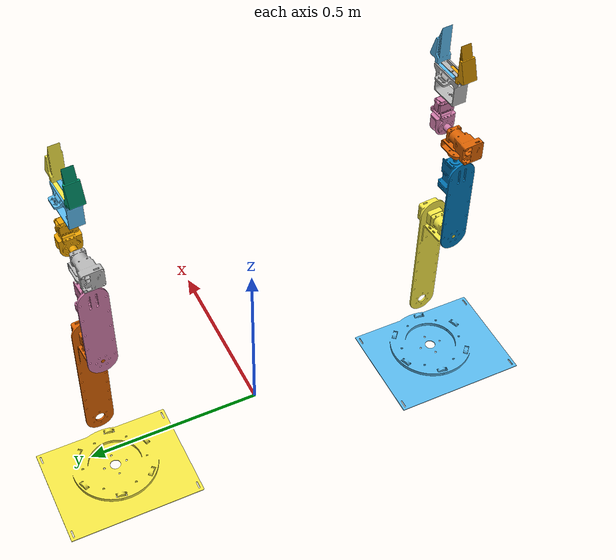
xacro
<?xml version="1.0"?>
<robot xmlns:xacro="http://www.ros.org/wiki/xacro" name="ArmPlate">

    <xacro:arg name="left_initial_positions_file"
            default="$(find arm_urdf_moveit_config)/config/left_initial_positions.yaml"/>
    <xacro:arg name="right_initial_positions_file"
            default="$(find arm_urdf_moveit_config)/config/right_initial_positions.yaml"/>

    <!-- Root link -->
    <link name="world"/>

    <!-- Xacro imports -->
    <xacro:include filename="$(find arm_urdf_moveit_config)/config/ArmPlate.xacro" />

<!-- Left arm -->
<xacro:ArmPlate
    name="left_arm"
    prefix="left_"
    initial_positions_file="$(arg left_initial_positions_file)"
    origin_xyz="0 -0.5 0"
    origin_rpy="0 0 0"/>

<!-- Right arm -->
<xacro:ArmPlate
    name="right_arm"
    prefix="right_"
    initial_positions_file="$(arg right_initial_positions_file)"
    origin_xyz="0 0.5 0"
    origin_rpy="0 0 0"/>

</robot>

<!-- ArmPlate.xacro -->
<robot name="dummy" xmlns:xacro="http://www.ros.org/wiki/xacro">

    <xacro:macro name="ArmPlate" params="name prefix initial_positions_file origin_xyz origin_rpy">

    <xacro:include filename="$(find arm_urdf_moveit_config)/config/ArmPlate.ros2_control.xacro" />
    <xacro:ArmPlate_ros2_control name="${name}" initial_positions_file="${initial_positions_file}" prefix="${prefix}"/>

    <joint name="${prefix}base_to_world" type="fixed">
    <origin xyz="${origin_xyz}" rpy="${origin_rpy}"/>
        <parent link="world" />
        <child link="${prefix}Base_link1-v1" />
    </joint>

    <link name="${prefix}Base_link1-v1">
        <inertial>
            <origin xyz="-0.0674024747578498 -0.052144759691377905 0.001871879485998631" rpy="0.0 0.0 0.0" />
            <mass value="4.311969816496875" />
            <inertia ixx="0.03729401814426159" iyy="0.028233182216333773" izz="0.06539104879017638" ixy="-3.479855292809475e-15" iyz="1.0668549377257364e-16" ixz="-0.00020885219602048547" />
        </inertial>
        <visual name="Base_link1-v1_visual">
            <origin xyz="0.0 0.0 0.0" rpy="0.0 0.0 0.0" />
            <geometry>
                <mesh filename="package://arm_urdf/meshes/Base_link1-v1.stl" scale="0.001 0.001 0.001" />
            </geometry>
        </visual>
        <collision name="Base_link1-v1_collision">
            <origin xyz="0.0 0.0 0.0" rpy="0.0 0.0 0.0" />
            <geometry>
                <mesh filename="package://arm_urdf/meshes/Base_link1-v1.stl" scale="0.001 0.001 0.001" />
            </geometry>
        </collision>
    </link>
    <link name="${prefix}2ndDOFDDD-v1">
        <inertial>
            <origin xyz="0.005563007183593101 0.008083968084292402 -0.10431093233027892" rpy="0.0 -0.0 0.0" />
            <mass value="6.914197067582951" />
            <inertia ixx="0.0489503398990333" iyy="0.05164846688679926" izz="0.026188561835283307" ixy="0.000744724254469125" iyz="0.0009319574397850192" ixz="-0.00045704067111378735" />
        </inertial>
    </link>
    <link name="${prefix}lnk1assm-v2">
        <inertial>
            <origin xyz="-0.002591598973958833 -0.23584751583887864 -0.00539988945227305" rpy="0.0 1.3877787807823214e-17 -1.5777218104420236e-30" />
            <mass value="2.0414167169593447" />
            <inertia ixx="0.029664413351168283" iyy="0.0017505470451872956" izz="0.02962243298274335" ixy="-0.00029616879202136004" iyz="0.0015603149109663106" ixz="2.540746428059758e-05" />
        </inertial>
        <visual name="lnk1assm-v2_visual">
            <origin xyz="-0.003921107309494927 -0.34147748775887143 0.08610000077174858" rpy="1.0011067892201222e-15 2.63677968348484e-16 1.0432232103974771e-16" />
            <geometry>
                <mesh filename="package://arm_urdf/meshes/lnk1assm-v2.stl" scale="0.001 0.001 0.001" />
            </geometry>
        </visual>
        <collision name="lnk1assm-v2_collision">
            <origin xyz="-0.003921107309494927 -0.34147748775887143 0.08610000077174858" rpy="1.0011067892201222e-15 2.63677968348484e-16 1.0432232103974771e-16" />
            <geometry>
                <mesh filename="package://arm_urdf/meshes/lnk1assm-v2.stl" scale="0.001 0.001 0.001" />
            </geometry>
        </collision>
    </link>
    <link name="${prefix}lnk2_assm-v2">
        <inertial>
            <origin xyz="0.015287483405147686 0.0015469235286940375 0.14314076456091882" rpy="0.0 -2.802596928649634e-45 7.718750464542261e-60" />
            <mass value="1.6041672165297656" />
            <inertia ixx="0.011935327683088248" iyy="0.011817416915501418" izz="0.001112072658466317" ixy="-1.4881667141780628e-06" iyz="-0.0001166157499106618" ixz="-0.0010845287768283282" />
        </inertial>
        <visual name="lnk2_assm-v2_visual">
            <origin xyz="0.03287283838328484 0.003560737736243089 0.2818374324484128" rpy="-1.4080220534306864e-15 -1.059118750771804e-14 -1.4931462929201005" />
            <geometry>
                <mesh filename="package://arm_urdf/meshes/lnk2_assm-v2.stl" scale="0.001 0.001 0.001" />
            </geometry>
        </visual>
        <collision name="lnk2_assm-v2_collision">
            <origin xyz="0.03287283838328484 0.003560737736243089 0.2818374324484128" rpy="-1.4080220534306864e-15 -1.059118750771804e-14 -1.4931462929201005" />
            <geometry>
                <mesh filename="package://arm_urdf/meshes/lnk2_assm-v2.stl" scale="0.001 0.001 0.001" />
            </geometry>
        </collision>
    </link>
    <link name="${prefix}5thDof_mnt-v2">
        <inertial>
            <origin xyz="-0.012784684069178872 -0.0013025970291178357 0.031390730609038686" rpy="0.0 -0.0 0.0" />
            <mass value="0.7682943067467453" />
            <inertia ixx="0.0005398526790914571" iyy="0.001098740864250658" izz="0.000876494162175584" ixy="-5.5264308595074155e-05" iyz="1.4526969696712633e-05" ixz="0.00015907949467902638" />
        </inertial>
        <visual name="5thDof_mnt-v2_visual">
            <origin xyz="0.06116513562152025 0.004759041505515995 0.04150000244841479" rpy="-3.063942619714997 -1.5707963267948506 0" />
            <geometry>
                <mesh filename="package://arm_urdf/meshes/5thDof_mnt-v2.stl" scale="0.001 0.001 0.001" />
            </geometry>
        </visual>
        <collision name="5thDof_mnt-v2_collision">
            <origin xyz="0.06116513562152025 0.004759041505515995 0.04150000244841479" rpy="-3.063942619714997 -1.5707963267948506 0" />
            <geometry>
                <mesh filename="package://arm_urdf/meshes/5thDof_mnt-v2.stl" scale="0.001 0.001 0.001" />
            </geometry>
        </collision>
    </link>
    <link name="${prefix}6Thdof-v2">
        <inertial>
            <origin xyz="0.008214367551119024 0.0006178674357249214 0.031384946859303826" rpy="-2.2420775429197073e-44 -0.0 0.0" />
            <mass value="0.8639927133401125" />
            <inertia ixx="0.0009572359903424752" iyy="0.0009230269883602205" izz="0.0002909038116962609" ixy="2.710767043214595e-06" iyz="9.914638568871148e-06" ixz="-4.8704209516635046e-05" />
        </inertial>
        <visual name="6Thdof-v2_visual">
            <origin xyz="0.011036478474497909 -0.012932846063207827 0.08200000244841477" rpy="4.266020662176333e-15 4.485125411027998e-14 -3.0639426197149975" />
            <geometry>
                <mesh filename="package://arm_urdf/meshes/6Thdof-v2.stl" scale="0.001 0.001 0.001" />
            </geometry>
        </visual>
        <collision name="6Thdof-v2_collision">
            <origin xyz="0.011036478474497909 -0.012932846063207827 0.08200000244841477" rpy="4.266020662176333e-15 4.485125411027998e-14 -3.0639426197149975" />
            <geometry>
                <mesh filename="package://arm_urdf/meshes/6Thdof-v2.stl" scale="0.001 0.001 0.001" />
            </geometry>
        </collision>
    </link>
    <link name="${prefix}gripperHousing-v2">
        <inertial>
            <origin xyz="-0.00013921429310007394 0.001855694220722368 0.047786878393741856" rpy="0.0 -0.0 0.0" />
            <mass value="0.5576326934437552" />
            <inertia ixx="0.0004695146364697145" iyy="0.0008816687160502767" izz="0.0006167594787314344" ixy="-3.232159477185512e-05" iyz="-1.2242098957490621e-05" ixz="9.183742992122149e-07" />
        </inertial>
        <visual name="gripperHousing-v2_visual">
            <origin xyz="-1.525502200117046e-09 3.936792145609047e-09 2.4484144489633764e-09" rpy="-4.266020662176041e-15 -2.0620936462850397e-14 0.07765003387479581" />
            <geometry>
                <mesh filename="package://arm_urdf/meshes/gripperHousing-v2.stl" scale="0.001 0.001 0.001" />
            </geometry>
        </visual>
        <collision name="gripperHousing-v2_collision">
            <origin xyz="-1.525502200117046e-09 3.936792145609047e-09 2.4484144489633764e-09" rpy="-4.266020662176041e-15 -2.0620936462850397e-14 0.07765003387479581" />
            <geometry>
                <mesh filename="package://arm_urdf/meshes/gripperHousing-v2.stl" scale="0.001 0.001 0.001" />
            </geometry>
        </collision>
    </link>
    <link name="${prefix}left_H-v1">
        <inertial>
            <origin xyz="-0.03857920530896109 -0.002507519809183858 0.0001992428471497476" rpy="-4.121466071543581e-45 -0.0 0.0" />
            <mass value="0.4330027264168371" />
            <inertia ixx="0.0001531814190167935" iyy="0.0003859475340479146" izz="0.00034050173036892506" ixy="-1.8463860142345745e-05" iyz="1.4471313147474644e-05" ixz="4.1220378661202906e-05" />
        </inertial>
        <visual name="left_H-v1_visual">
            <origin xyz="0.03539594370174484 -0.026115815402647638 -0.029483865374257602" rpy="-2.6340835845626366e-13 1.4931462929201007 -1.570796326795163" />
            <geometry>
                <mesh filename="package://arm_urdf/meshes/left_H-v1.stl" scale="0.001 0.001 0.001" />
            </geometry>
        </visual>
        <collision name="left_H-v1_collision">
            <origin xyz="0.03539594370174484 -0.026115815402647638 -0.029483865374257602" rpy="-2.6340835845626366e-13 1.4931462929201007 -1.570796326795163" />
            <geometry>
                <mesh filename="package://arm_urdf/meshes/left_H-v1.stl" scale="0.001 0.001 0.001" />
            </geometry>
        </collision>
    </link>
    <link name="${prefix}right_H-v1">
        <inertial>
            <origin xyz="0.03857921508488488 0.0025075221635958746 0.00019924149858097985" rpy="-2.9674555715114166e-45 -0.0 0.0" />
            <mass value="0.4330027264168263" />
            <inertia ixx="0.00015318174926833418" iyy="0.0003859473890370778" izz="0.0003405012645987804" ixy="-1.8463956405788322e-05" iyz="-1.4471222312344915e-05" ixz="-4.122038659255113e-05" />
        </inertial>
        <visual name="right_H-v1_visual">
            <origin xyz="0.0014000027762429569 0.02697397988318141 -0.06071536489232356" rpy="-1.5707963267951677 -1.4931462929201007 -1.570796326794629" />
            <geometry>
                <mesh filename="package://arm_urdf/meshes/right_H-v1.stl" scale="0.001 0.001 0.001" />
            </geometry>
        </visual>
        <collision name="right_H-v1_collision">
            <origin xyz="0.0014000027762429569 0.02697397988318141 -0.06071536489232356" rpy="-1.5707963267951677 -1.4931462929201007 -1.570796326794629" />
            <geometry>
                <mesh filename="package://arm_urdf/meshes/right_H-v1.stl" scale="0.001 0.001 0.001" />
            </geometry>
        </collision>
    </link>
    <link name="${prefix}grasp_frame">
    </link>
    <joint name="${prefix}grasp_joint" type="fixed">
        <origin xyz="0.0 0.0 0.15" rpy="0.0 0.0 0.0" />
        <parent link="${prefix}gripperHousing-v2" />
        <child link="${prefix}grasp_frame" />
    </joint>
    <joint name="${prefix}Base_link1-v1_Revolute-1" type="continuous">
        <origin xyz="-0.05188764 -0.052144760000000005 0.01" rpy="3.141592653589793 -0.0 0.0" />
        <parent link="${prefix}Base_link1-v1" />
        <child link="${prefix}2ndDOFDDD-v1" />
        <axis xyz="0.0 -1.158152704299605e-16 1.0" />
    </joint>
    <joint name="${prefix}2ndDOFDDD-v1_Revolute-8" type="continuous">
        <origin xyz="0.052840300000000937 -0.004111319999999985 -0.13483788000000002" rpy="1.5707963267948974 -1.0493863576455419e-14 -1.6484463606696926" />
        <parent link="${prefix}2ndDOFDDD-v1" />
        <child link="${prefix}lnk1assm-v2" />
        <axis xyz="4.4493059889183506e-08 8.254742963267541e-16 1.0000002466764686" />
    </joint>
    <joint name="${prefix}lnk1assm-v2_Revolute-9" type="continuous">
        <origin xyz="-0.003921103006697173 -0.3414774899999999 0.08534999873249588" rpy="-1.5707963267948828 1.4931462929201005 3.141592653589793" />
        <parent link="${prefix}lnk1assm-v2" />
        <child link="${prefix}lnk2_assm-v2" />
        <axis xyz="-0.996987 -0.07757199999999999 2.532454343584795e-16" />
    </joint>
    <joint name="${prefix}lnk2_assm-v2_Revolute-10" type="continuous">
        <origin xyz="0.03287284000000008 0.003560739999999996 0.28183742999999994" rpy="-3.94430452610506e-31 -1.9569357318777842e-29 -1.333490377244479e-29" />
        <parent link="${prefix}lnk2_assm-v2" />
        <child link="${prefix}5thDof_mnt-v2" />
        <axis xyz="0.0 -3.581972260486363e-77 1.0" />
    </joint>
    <joint name="${prefix}5thDof_mnt-v2_Revolute-11" type="continuous">
        <origin xyz="0.06116514 0.004759040000000008 0.04150000000000006" rpy="1.9558217197179686e-28 -5.341661116891984e-106 1.4912625582886812e-29" />
        <parent link="${prefix}5thDof_mnt-v2" />
        <child link="${prefix}6Thdof-v2" />
        <axis xyz="0.9969869999999998 0.077572 8.907382643586233e-30" />
    </joint>
    <joint name="${prefix}6Thdof-v2_Revolute-12" type="continuous">
        <origin xyz="0.011036480000000001 -0.012932850000000001 0.08199999999999989" rpy="-1.9560432897117202e-28 -3.7421984143732066e-56 -1.9133637675896323e-28" />
        <parent link="${prefix}6Thdof-v2" />
        <child link="${prefix}gripperHousing-v2" />
        <axis xyz="0.0 -2.21569993751437e-32 1.0" />
    </joint>
    <joint name="${prefix}gripperHousing-v2_Slider-13" type="prismatic">
        <origin xyz="-0.049694199999999994 -0.0058725700000000014 0.07300000000000012" rpy="3.141592653589793 1.5707963267948952 0" />
        <parent link="${prefix}gripperHousing-v2" />
        <child link="${prefix}left_H-v1" />
        <axis xyz="1.0132025937202353e-16 0.077572 0.996987" />
        <limit upper="0.07" lower="-0.04" effort="10" velocity="10" />
    </joint>
    <joint name="${prefix}gripperHousing-v2_Slider-14" type="prismatic">
        <origin xyz="0.049694190000000006 0.0058725799999999944 0.07300000000000012" rpy="-3.141592653589793 -1.5707963267948941 0" />
        <parent link="${prefix}gripperHousing-v2" />
        <child link="${prefix}right_H-v1" />
        <axis xyz="2.0264051874404916e-16 -0.077572 0.996987" />
        <limit upper="0.07" lower="-0.04" effort="10" velocity="10" />
        <mimic joint="${prefix}gripperHousing-v2_Slider-13" />
    </joint>
    </xacro:macro>

</robot>
